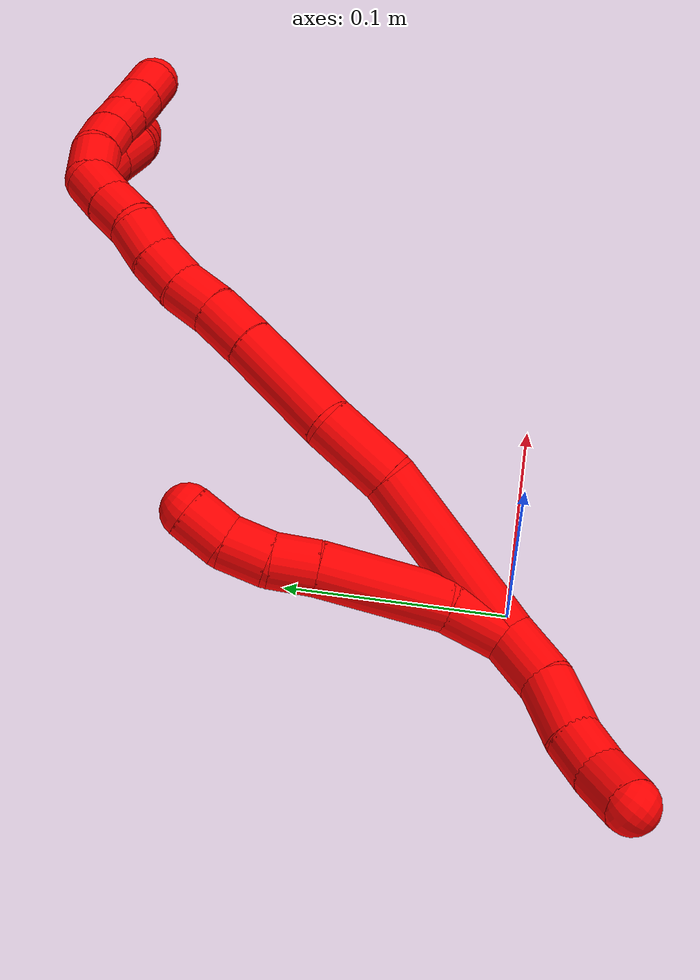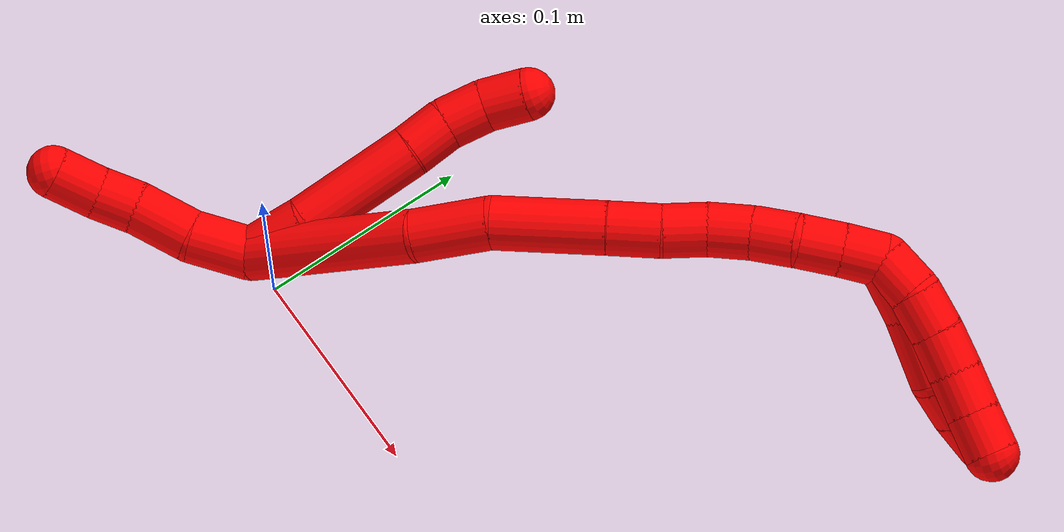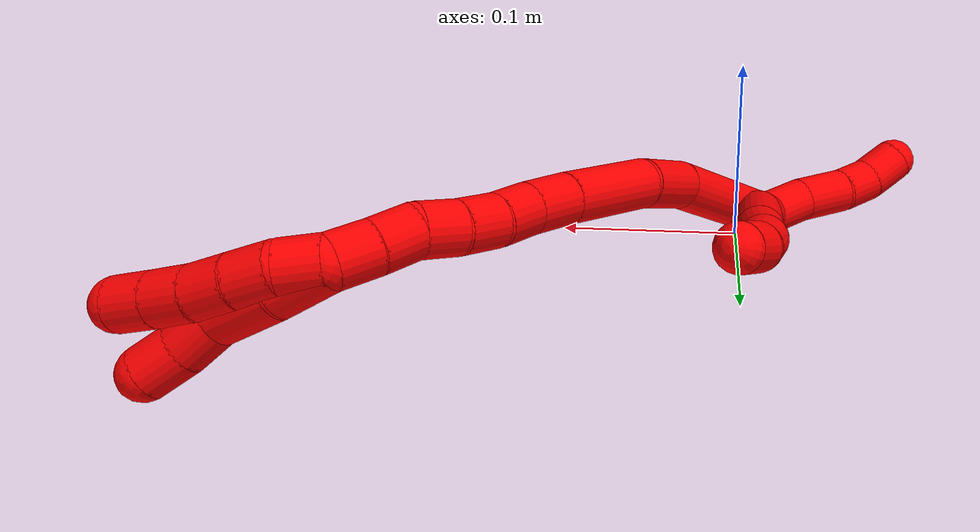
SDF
<sdf version="1.7">
 <world name="default">
  <model name="2">
   <static>0</static>
   <link name="2">
    <collision name="collision-cylinder-e_1_2_8">
     <pose>-0.003391 -0.000907 0.014406 0.06288 -0.230718 -0.007289</pose>
     <geometry><cylinder><radius>0.0125</radius><length>0.029655</length></cylinder></geometry>
     <surface>
      <friction><ode><mu>1.16</mu><mu2>1.16</mu2><slip1>0</slip1><slip2>0</slip2></ode></friction>
      <contact><ode><kp>1e+06</kp><kd>1</kd><max_vel>0</max_vel><min_depth>0.001</min_depth></ode></contact>
     </surface>
    </collision>
    <visual name="visual-cylinder-e_1_2_8">
     <pose>-0.003391 -0.000907 0.014406 0.06288 -0.230718 -0.007289</pose>
     <geometry><cylinder><radius>0.0125</radius><length>0.029655</length></cylinder></geometry>
     <material><ambient>1 0 0 1</ambient></material>
    </visual>
    <collision name="collision-cylinder-e_2_8_9">
     <pose>-0.018745 -0.000324 0.055417 -0.055944 -0.422 0.011985</pose>
     <geometry><cylinder><radius>0.0125</radius><length>0.058418</length></cylinder></geometry>
     <surface>
      <friction><ode><mu>1.16</mu><mu2>1.16</mu2><slip1>0</slip1><slip2>0</slip2></ode></friction>
      <contact><ode><kp>1e+06</kp><kd>1</kd><max_vel>0</max_vel><min_depth>0.001</min_depth></ode></contact>
     </surface>
    </collision>
    <visual name="visual-cylinder-e_2_8_9">
     <pose>-0.018745 -0.000324 0.055417 -0.055944 -0.422 0.011985</pose>
     <geometry><cylinder><radius>0.0125</radius><length>0.058418</length></cylinder></geometry>
     <material><ambient>1 0 0 1</ambient></material>
    </visual>
    <collision name="collision-cylinder-e_3_9_10">
     <pose>-0.035792 0.001914 0.090961 -0.083521 -0.515612 0.022034</pose>
     <geometry><cylinder><radius>0.0125</radius><length>0.020621</length></cylinder></geometry>
     <surface>
      <friction><ode><mu>1.16</mu><mu2>1.16</mu2><slip1>0</slip1><slip2>0</slip2></ode></friction>
      <contact><ode><kp>1e+06</kp><kd>1</kd><max_vel>0</max_vel><min_depth>0.001</min_depth></ode></contact>
     </surface>
    </collision>
    <visual name="visual-cylinder-e_3_9_10">
     <pose>-0.035792 0.001914 0.090961 -0.083521 -0.515612 0.022034</pose>
     <geometry><cylinder><radius>0.0125</radius><length>0.020621</length></cylinder></geometry>
     <material><ambient>1 0 0 1</ambient></material>
    </visual>
    <collision name="collision-cylinder-e_4_10_11">
     <pose>-0.043725 0.00401 0.109635 -0.137541 -0.282152 0.019564</pose>
     <geometry><cylinder><radius>0.0125</radius><length>0.020466</length></cylinder></geometry>
     <surface>
      <friction><ode><mu>1.16</mu><mu2>1.16</mu2><slip1>0</slip1><slip2>0</slip2></ode></friction>
      <contact><ode><kp>1e+06</kp><kd>1</kd><max_vel>0</max_vel><min_depth>0.001</min_depth></ode></contact>
     </surface>
    </collision>
    <visual name="visual-cylinder-e_4_10_11">
     <pose>-0.043725 0.00401 0.109635 -0.137541 -0.282152 0.019564</pose>
     <geometry><cylinder><radius>0.0125</radius><length>0.020466</length></cylinder></geometry>
     <material><ambient>1 0 0 1</ambient></material>
    </visual>
    <collision name="collision-cylinder-e_5_11_6">
     <pose>-0.046595 0.006303 0.129748 -0.090849 -0.001933 8.8e-05</pose>
     <geometry><cylinder><radius>0.0125</radius><length>0.02084</length></cylinder></geometry>
     <surface>
      <friction><ode><mu>1.16</mu><mu2>1.16</mu2><slip1>0</slip1><slip2>0</slip2></ode></friction>
      <contact><ode><kp>1e+06</kp><kd>1</kd><max_vel>0</max_vel><min_depth>0.001</min_depth></ode></contact>
     </surface>
    </collision>
    <visual name="visual-cylinder-e_5_11_6">
     <pose>-0.046595 0.006303 0.129748 -0.090849 -0.001933 8.8e-05</pose>
     <geometry><cylinder><radius>0.0125</radius><length>0.02084</length></cylinder></geometry>
     <material><ambient>1 0 0 1</ambient></material>
    </visual>
    <collision name="collision-cylinder-e_1_2_12">
     <pose>-0.003904 -0.007966 -0.011413 2.53221 -0.273451 -0.824802</pose>
     <geometry><cylinder><radius>0.0125</radius><length>0.02891</length></cylinder></geometry>
     <surface>
      <friction><ode><mu>1.16</mu><mu2>1.16</mu2><slip1>0</slip1><slip2>0</slip2></ode></friction>
      <contact><ode><kp>1e+06</kp><kd>1</kd><max_vel>0</max_vel><min_depth>0.001</min_depth></ode></contact>
     </surface>
    </collision>
    <visual name="visual-cylinder-e_1_2_12">
     <pose>-0.003904 -0.007966 -0.011413 2.53221 -0.273451 -0.824802</pose>
     <geometry><cylinder><radius>0.0125</radius><length>0.02891</length></cylinder></geometry>
     <material><ambient>1 0 0 1</ambient></material>
    </visual>
    <collision name="collision-cylinder-e_2_12_13">
     <pose>-0.014563 -0.023389 -0.03272 2.49578 -0.499199 -1.30204</pose>
     <geometry><cylinder><radius>0.0125</radius><length>0.028224</length></cylinder></geometry>
     <surface>
      <friction><ode><mu>1.16</mu><mu2>1.16</mu2><slip1>0</slip1><slip2>0</slip2></ode></friction>
      <contact><ode><kp>1e+06</kp><kd>1</kd><max_vel>0</max_vel><min_depth>0.001</min_depth></ode></contact>
     </surface>
    </collision>
    <visual name="visual-cylinder-e_2_12_13">
     <pose>-0.014563 -0.023389 -0.03272 2.49578 -0.499199 -1.30204</pose>
     <geometry><cylinder><radius>0.0125</radius><length>0.028224</length></cylinder></geometry>
     <material><ambient>1 0 0 1</ambient></material>
    </visual>
    <collision name="collision-cylinder-e_3_13_14">
     <pose>-0.02453 -0.036817 -0.050037 2.46413 -0.325119 -0.871368</pose>
     <geometry><cylinder><radius>0.0125</radius><length>0.020106</length></cylinder></geometry>
     <surface>
      <friction><ode><mu>1.16</mu><mu2>1.16</mu2><slip1>0</slip1><slip2>0</slip2></ode></friction>
      <contact><ode><kp>1e+06</kp><kd>1</kd><max_vel>0</max_vel><min_depth>0.001</min_depth></ode></contact>
     </surface>
    </collision>
    <visual name="visual-cylinder-e_3_13_14">
     <pose>-0.02453 -0.036817 -0.050037 2.46413 -0.325119 -0.871368</pose>
     <geometry><cylinder><radius>0.0125</radius><length>0.020106</length></cylinder></geometry>
     <material><ambient>1 0 0 1</ambient></material>
    </visual>
    <collision name="collision-cylinder-e_4_14_5">
     <pose>-0.030331 -0.051529 -0.064272 2.23279 -0.229574 -0.463555</pose>
     <geometry><cylinder><radius>0.0125</radius><length>0.02276</length></cylinder></geometry>
     <surface>
      <friction><ode><mu>1.16</mu><mu2>1.16</mu2><slip1>0</slip1><slip2>0</slip2></ode></friction>
      <contact><ode><kp>1e+06</kp><kd>1</kd><max_vel>0</max_vel><min_depth>0.001</min_depth></ode></contact>
     </surface>
    </collision>
    <visual name="visual-cylinder-e_4_14_5">
     <pose>-0.030331 -0.051529 -0.064272 2.23279 -0.229574 -0.463555</pose>
     <geometry><cylinder><radius>0.0125</radius><length>0.02276</length></cylinder></geometry>
     <material><ambient>1 0 0 1</ambient></material>
    </visual>
    <collision name="collision-cylinder-e_1_2_15">
     <pose>0.009879 -8.1e-05 0.041371 0.001956 0.234396 0.00023</pose>
     <geometry><cylinder><radius>0.0125</radius><length>0.085069</length></cylinder></geometry>
     <surface>
      <friction><ode><mu>1.16</mu><mu2>1.16</mu2><slip1>0</slip1><slip2>0</slip2></ode></friction>
      <contact><ode><kp>1e+06</kp><kd>1</kd><max_vel>0</max_vel><min_depth>0.001</min_depth></ode></contact>
     </surface>
    </collision>
    <visual name="visual-cylinder-e_1_2_15">
     <pose>0.009879 -8.1e-05 0.041371 0.001956 0.234396 0.00023</pose>
     <geometry><cylinder><radius>0.0125</radius><length>0.085069</length></cylinder></geometry>
     <material><ambient>1 0 0 1</ambient></material>
    </visual>
    <collision name="collision-cylinder-e_2_15_16">
     <pose>0.020992 0.002138 0.100603 -0.128051 0.068452 -0.00439</pose>
     <geometry><cylinder><radius>0.0125</radius><length>0.036101</length></cylinder></geometry>
     <surface>
      <friction><ode><mu>1.16</mu><mu2>1.16</mu2><slip1>0</slip1><slip2>0</slip2></ode></friction>
      <contact><ode><kp>1e+06</kp><kd>1</kd><max_vel>0</max_vel><min_depth>0.001</min_depth></ode></contact>
     </surface>
    </collision>
    <visual name="visual-cylinder-e_2_15_16">
     <pose>0.020992 0.002138 0.100603 -0.128051 0.068452 -0.00439</pose>
     <geometry><cylinder><radius>0.0125</radius><length>0.036101</length></cylinder></geometry>
     <material><ambient>1 0 0 1</ambient></material>
    </visual>
    <collision name="collision-cylinder-e_3_16_17">
     <pose>0.026589 0.013422 0.142859 -0.352879 0.166249 -0.029707</pose>
     <geometry><cylinder><radius>0.0125</radius><length>0.05272</length></cylinder></geometry>
     <surface>
      <friction><ode><mu>1.16</mu><mu2>1.16</mu2><slip1>0</slip1><slip2>0</slip2></ode></friction>
      <contact><ode><kp>1e+06</kp><kd>1</kd><max_vel>0</max_vel><min_depth>0.001</min_depth></ode></contact>
     </surface>
    </collision>
    <visual name="visual-cylinder-e_3_16_17">
     <pose>0.026589 0.013422 0.142859 -0.352879 0.166249 -0.029707</pose>
     <geometry><cylinder><radius>0.0125</radius><length>0.05272</length></cylinder></geometry>
     <material><ambient>1 0 0 1</ambient></material>
    </visual>
    <collision name="collision-cylinder-e_4_17_18">
     <pose>0.032734 0.027063 0.178438 -0.394513 0.14607 -0.029243</pose>
     <geometry><cylinder><radius>0.0125</radius><length>0.024489</length></cylinder></geometry>
     <surface>
      <friction><ode><mu>1.16</mu><mu2>1.16</mu2><slip1>0</slip1><slip2>0</slip2></ode></friction>
      <contact><ode><kp>1e+06</kp><kd>1</kd><max_vel>0</max_vel><min_depth>0.001</min_depth></ode></contact>
     </surface>
    </collision>
    <visual name="visual-cylinder-e_4_17_18">
     <pose>0.032734 0.027063 0.178438 -0.394513 0.14607 -0.029243</pose>
     <geometry><cylinder><radius>0.0125</radius><length>0.024489</length></cylinder></geometry>
     <material><ambient>1 0 0 1</ambient></material>
    </visual>
    <collision name="collision-cylinder-e_5_18_19">
     <pose>0.034894 0.035674 0.199218 -0.390933 0.036409 -0.007209</pose>
     <geometry><cylinder><radius>0.0125</radius><length>0.020772</length></cylinder></geometry>
     <surface>
      <friction><ode><mu>1.16</mu><mu2>1.16</mu2><slip1>0</slip1><slip2>0</slip2></ode></friction>
      <contact><ode><kp>1e+06</kp><kd>1</kd><max_vel>0</max_vel><min_depth>0.001</min_depth></ode></contact>
     </surface>
    </collision>
    <visual name="visual-cylinder-e_5_18_19">
     <pose>0.034894 0.035674 0.199218 -0.390933 0.036409 -0.007209</pose>
     <geometry><cylinder><radius>0.0125</radius><length>0.020772</length></cylinder></geometry>
     <material><ambient>1 0 0 1</ambient></material>
    </visual>
    <collision name="collision-cylinder-e_6_19_20">
     <pose>0.037304 0.043168 0.218192 -0.36082 0.200058 -0.036607</pose>
     <geometry><cylinder><radius>0.0125</radius><length>0.020455</length></cylinder></geometry>
     <surface>
      <friction><ode><mu>1.16</mu><mu2>1.16</mu2><slip1>0</slip1><slip2>0</slip2></ode></friction>
      <contact><ode><kp>1e+06</kp><kd>1</kd><max_vel>0</max_vel><min_depth>0.001</min_depth></ode></contact>
     </surface>
    </collision>
    <visual name="visual-cylinder-e_6_19_20">
     <pose>0.037304 0.043168 0.218192 -0.36082 0.200058 -0.036607</pose>
     <geometry><cylinder><radius>0.0125</radius><length>0.020455</length></cylinder></geometry>
     <material><ambient>1 0 0 1</ambient></material>
    </visual>
    <collision name="collision-cylinder-e_7_20_21">
     <pose>0.042679 0.049851 0.23664 -0.33367 0.335068 -0.056944</pose>
     <geometry><cylinder><radius>0.0125</radius><length>0.02033</length></cylinder></geometry>
     <surface>
      <friction><ode><mu>1.16</mu><mu2>1.16</mu2><slip1>0</slip1><slip2>0</slip2></ode></friction>
      <contact><ode><kp>1e+06</kp><kd>1</kd><max_vel>0</max_vel><min_depth>0.001</min_depth></ode></contact>
     </surface>
    </collision>
    <visual name="visual-cylinder-e_7_20_21">
     <pose>0.042679 0.049851 0.23664 -0.33367 0.335068 -0.056944</pose>
     <geometry><cylinder><radius>0.0125</radius><length>0.02033</length></cylinder></geometry>
     <material><ambient>1 0 0 1</ambient></material>
    </visual>
    <collision name="collision-cylinder-e_8_21_22">
     <pose>0.047918 0.058398 0.253923 -0.58196 0.190525 -0.057216</pose>
     <geometry><cylinder><radius>0.0125</radius><length>0.020025</length></cylinder></geometry>
     <surface>
      <friction><ode><mu>1.16</mu><mu2>1.16</mu2><slip1>0</slip1><slip2>0</slip2></ode></friction>
      <contact><ode><kp>1e+06</kp><kd>1</kd><max_vel>0</max_vel><min_depth>0.001</min_depth></ode></contact>
     </surface>
    </collision>
    <visual name="visual-cylinder-e_8_21_22">
     <pose>0.047918 0.058398 0.253923 -0.58196 0.190525 -0.057216</pose>
     <geometry><cylinder><radius>0.0125</radius><length>0.020025</length></cylinder></geometry>
     <material><ambient>1 0 0 1</ambient></material>
    </visual>
    <collision name="collision-cylinder-e_9_22_1">
     <pose>0.052314 0.069038 0.270305 -0.56995 0.252154 -0.074228</pose>
     <geometry><cylinder><radius>0.0125</radius><length>0.020038</length></cylinder></geometry>
     <surface>
      <friction><ode><mu>1.16</mu><mu2>1.16</mu2><slip1>0</slip1><slip2>0</slip2></ode></friction>
      <contact><ode><kp>1e+06</kp><kd>1</kd><max_vel>0</max_vel><min_depth>0.001</min_depth></ode></contact>
     </surface>
    </collision>
    <visual name="visual-cylinder-e_9_22_1">
     <pose>0.052314 0.069038 0.270305 -0.56995 0.252154 -0.074228</pose>
     <geometry><cylinder><radius>0.0125</radius><length>0.020038</length></cylinder></geometry>
     <material><ambient>1 0 0 1</ambient></material>
    </visual>
    <collision name="collision-cylinder-e_1_1_23">
     <pose>0.062072 0.079549 0.282888 -0.874099 0.812191 -0.396495</pose>
     <geometry><cylinder><radius>0.0125</radius><length>0.02</length></cylinder></geometry>
     <surface>
      <friction><ode><mu>1.16</mu><mu2>1.16</mu2><slip1>0</slip1><slip2>0</slip2></ode></friction>
      <contact><ode><kp>1e+06</kp><kd>1</kd><max_vel>0</max_vel><min_depth>0.001</min_depth></ode></contact>
     </surface>
    </collision>
    <visual name="visual-cylinder-e_1_1_23">
     <pose>0.062072 0.079549 0.282888 -0.874099 0.812191 -0.396495</pose>
     <geometry><cylinder><radius>0.0125</radius><length>0.02</length></cylinder></geometry>
     <material><ambient>1 0 0 1</ambient></material>
    </visual>
    <collision name="collision-cylinder-e_2_23_24">
     <pose>0.076543 0.09145 0.28932 -1.27505 0.805708 -0.611524</pose>
     <geometry><cylinder><radius>0.0125</radius><length>0.02</length></cylinder></geometry>
     <surface>
      <friction><ode><mu>1.16</mu><mu2>1.16</mu2><slip1>0</slip1><slip2>0</slip2></ode></friction>
      <contact><ode><kp>1e+06</kp><kd>1</kd><max_vel>0</max_vel><min_depth>0.001</min_depth></ode></contact>
     </surface>
    </collision>
    <visual name="visual-cylinder-e_2_23_24">
     <pose>0.076543 0.09145 0.28932 -1.27505 0.805708 -0.611524</pose>
     <geometry><cylinder><radius>0.0125</radius><length>0.02</length></cylinder></geometry>
     <material><ambient>1 0 0 1</ambient></material>
    </visual>
    <collision name="collision-cylinder-e_3_24_25">
     <pose>0.091164 0.104673 0.292603 -1.38149 0.834246 -0.702211</pose>
     <geometry><cylinder><radius>0.0125</radius><length>0.02</length></cylinder></geometry>
     <surface>
      <friction><ode><mu>1.16</mu><mu2>1.16</mu2><slip1>0</slip1><slip2>0</slip2></ode></friction>
      <contact><ode><kp>1e+06</kp><kd>1</kd><max_vel>0</max_vel><min_depth>0.001</min_depth></ode></contact>
     </surface>
    </collision>
    <visual name="visual-cylinder-e_3_24_25">
     <pose>0.091164 0.104673 0.292603 -1.38149 0.834246 -0.702211</pose>
     <geometry><cylinder><radius>0.0125</radius><length>0.02</length></cylinder></geometry>
     <material><ambient>1 0 0 1</ambient></material>
    </visual>
    <collision name="collision-cylinder-e_4_25_26">
     <pose>0.106661 0.117021 0.29509 -1.36126 0.942264 -0.782396</pose>
     <geometry><cylinder><radius>0.0125</radius><length>0.02</length></cylinder></geometry>
     <surface>
      <friction><ode><mu>1.16</mu><mu2>1.16</mu2><slip1>0</slip1><slip2>0</slip2></ode></friction>
      <contact><ode><kp>1e+06</kp><kd>1</kd><max_vel>0</max_vel><min_depth>0.001</min_depth></ode></contact>
     </surface>
    </collision>
    <visual name="visual-cylinder-e_4_25_26">
     <pose>0.106661 0.117021 0.29509 -1.36126 0.942264 -0.782396</pose>
     <geometry><cylinder><radius>0.0125</radius><length>0.02</length></cylinder></geometry>
     <material><ambient>1 0 0 1</ambient></material>
    </visual>
    <collision name="collision-cylinder-e_5_26_4">
     <pose>0.122906 0.128389 0.297703 -1.32815 0.953762 -0.768523</pose>
     <geometry><cylinder><radius>0.0125</radius><length>0.02</length></cylinder></geometry>
     <surface>
      <friction><ode><mu>1.16</mu><mu2>1.16</mu2><slip1>0</slip1><slip2>0</slip2></ode></friction>
      <contact><ode><kp>1e+06</kp><kd>1</kd><max_vel>0</max_vel><min_depth>0.001</min_depth></ode></contact>
     </surface>
    </collision>
    <visual name="visual-cylinder-e_5_26_4">
     <pose>0.122906 0.128389 0.297703 -1.32815 0.953762 -0.768523</pose>
     <geometry><cylinder><radius>0.0125</radius><length>0.02</length></cylinder></geometry>
     <material><ambient>1 0 0 1</ambient></material>
    </visual>
    <collision name="collision-cylinder-e_1_1_27">
     <pose>0.062986 0.084966 0.280076 -1.422 0.647197 -0.562411</pose>
     <geometry><cylinder><radius>0.0125</radius><length>0.027108</length></cylinder></geometry>
     <surface>
      <friction><ode><mu>1.16</mu><mu2>1.16</mu2><slip1>0</slip1><slip2>0</slip2></ode></friction>
      <contact><ode><kp>1e+06</kp><kd>1</kd><max_vel>0</max_vel><min_depth>0.001</min_depth></ode></contact>
     </surface>
    </collision>
    <visual name="visual-cylinder-e_1_1_27">
     <pose>0.062986 0.084966 0.280076 -1.422 0.647197 -0.562411</pose>
     <geometry><cylinder><radius>0.0125</radius><length>0.027108</length></cylinder></geometry>
     <material><ambient>1 0 0 1</ambient></material>
    </visual>
    <collision name="collision-cylinder-e_2_27_28">
     <pose>0.082164 0.107813 0.282226 -1.52588 0.735404 -0.705759</pose>
     <geometry><cylinder><radius>0.0125</radius><length>0.03281</length></cylinder></geometry>
     <surface>
      <friction><ode><mu>1.16</mu><mu2>1.16</mu2><slip1>0</slip1><slip2>0</slip2></ode></friction>
      <contact><ode><kp>1e+06</kp><kd>1</kd><max_vel>0</max_vel><min_depth>0.001</min_depth></ode></contact>
     </surface>
    </collision>
    <visual name="visual-cylinder-e_2_27_28">
     <pose>0.082164 0.107813 0.282226 -1.52588 0.735404 -0.705759</pose>
     <geometry><cylinder><radius>0.0125</radius><length>0.03281</length></cylinder></geometry>
     <material><ambient>1 0 0 1</ambient></material>
    </visual>
    <collision name="collision-cylinder-e_3_28_29">
     <pose>0.097128 0.129046 0.284174 -1.4176 0.406747 -0.350034</pose>
     <geometry><cylinder><radius>0.0125</radius><length>0.020007</length></cylinder></geometry>
     <surface>
      <friction><ode><mu>1.16</mu><mu2>1.16</mu2><slip1>0</slip1><slip2>0</slip2></ode></friction>
      <contact><ode><kp>1e+06</kp><kd>1</kd><max_vel>0</max_vel><min_depth>0.001</min_depth></ode></contact>
     </surface>
    </collision>
    <visual name="visual-cylinder-e_3_28_29">
     <pose>0.097128 0.129046 0.284174 -1.4176 0.406747 -0.350034</pose>
     <geometry><cylinder><radius>0.0125</radius><length>0.020007</length></cylinder></geometry>
     <material><ambient>1 0 0 1</ambient></material>
    </visual>
    <collision name="collision-cylinder-e_4_29_3">
     <pose>0.105576 0.146691 0.288263 -1.26677 0.46386 -0.343445</pose>
     <geometry><cylinder><radius>0.0125</radius><length>0.020075</length></cylinder></geometry>
     <surface>
      <friction><ode><mu>1.16</mu><mu2>1.16</mu2><slip1>0</slip1><slip2>0</slip2></ode></friction>
      <contact><ode><kp>1e+06</kp><kd>1</kd><max_vel>0</max_vel><min_depth>0.001</min_depth></ode></contact>
     </surface>
    </collision>
    <visual name="visual-cylinder-e_4_29_3">
     <pose>0.105576 0.146691 0.288263 -1.26677 0.46386 -0.343445</pose>
     <geometry><cylinder><radius>0.0125</radius><length>0.020075</length></cylinder></geometry>
     <material><ambient>1 0 0 1</ambient></material>
    </visual>
    <collision name="collision-sphere-3">
     <pose>0.110067 0.155256 0.29095 0 -0 0</pose>
     <geometry><sphere><radius>0.0125</radius></sphere></geometry>
     <surface>
      <friction><ode><mu>1.16</mu><mu2>1.16</mu2><slip1>0</slip1><slip2>0</slip2></ode></friction>
      <contact><ode><kp>1e+06</kp><kd>1</kd><max_vel>0</max_vel><min_depth>0.001</min_depth></ode></contact>
     </surface>
    </collision>
    <visual name="visual-sphere-3">
     <pose>0.110067 0.155256 0.29095 0 -0 0</pose>
     <geometry><sphere><radius>0.0125</radius></sphere></geometry>
     <material><ambient>1 0 0 1</ambient></material>
    </visual>
    <collision name="collision-sphere-29">
     <pose>0.101086 0.138126 0.285576 0 -0 0</pose>
     <geometry><sphere><radius>0.0125</radius></sphere></geometry>
     <surface>
      <friction><ode><mu>1.16</mu><mu2>1.16</mu2><slip1>0</slip1><slip2>0</slip2></ode></friction>
      <contact><ode><kp>1e+06</kp><kd>1</kd><max_vel>0</max_vel><min_depth>0.001</min_depth></ode></contact>
     </surface>
    </collision>
    <visual name="visual-sphere-29">
     <pose>0.101086 0.138126 0.285576 0 -0 0</pose>
     <geometry><sphere><radius>0.0125</radius></sphere></geometry>
     <material><ambient>1 0 0 1</ambient></material>
    </visual>
    <collision name="collision-sphere-28">
     <pose>0.09317 0.119966 0.282772 0 -0 0</pose>
     <geometry><sphere><radius>0.0125</radius></sphere></geometry>
     <surface>
      <friction><ode><mu>1.16</mu><mu2>1.16</mu2><slip1>0</slip1><slip2>0</slip2></ode></friction>
      <contact><ode><kp>1e+06</kp><kd>1</kd><max_vel>0</max_vel><min_depth>0.001</min_depth></ode></contact>
     </surface>
    </collision>
    <visual name="visual-sphere-28">
     <pose>0.09317 0.119966 0.282772 0 -0 0</pose>
     <geometry><sphere><radius>0.0125</radius></sphere></geometry>
     <material><ambient>1 0 0 1</ambient></material>
    </visual>
    <collision name="collision-sphere-27">
     <pose>0.071158 0.09566 0.281679 0 -0 0</pose>
     <geometry><sphere><radius>0.0125</radius></sphere></geometry>
     <surface>
      <friction><ode><mu>1.16</mu><mu2>1.16</mu2><slip1>0</slip1><slip2>0</slip2></ode></friction>
      <contact><ode><kp>1e+06</kp><kd>1</kd><max_vel>0</max_vel><min_depth>0.001</min_depth></ode></contact>
     </surface>
    </collision>
    <visual name="visual-sphere-27">
     <pose>0.071158 0.09566 0.281679 0 -0 0</pose>
     <geometry><sphere><radius>0.0125</radius></sphere></geometry>
     <material><ambient>1 0 0 1</ambient></material>
    </visual>
    <collision name="collision-sphere-4">
     <pose>0.131062 0.134005 0.299094 0 -0 0</pose>
     <geometry><sphere><radius>0.0125</radius></sphere></geometry>
     <surface>
      <friction><ode><mu>1.16</mu><mu2>1.16</mu2><slip1>0</slip1><slip2>0</slip2></ode></friction>
      <contact><ode><kp>1e+06</kp><kd>1</kd><max_vel>0</max_vel><min_depth>0.001</min_depth></ode></contact>
     </surface>
    </collision>
    <visual name="visual-sphere-4">
     <pose>0.131062 0.134005 0.299094 0 -0 0</pose>
     <geometry><sphere><radius>0.0125</radius></sphere></geometry>
     <material><ambient>1 0 0 1</ambient></material>
    </visual>
    <collision name="collision-sphere-26">
     <pose>0.11475 0.122772 0.296313 0 -0 0</pose>
     <geometry><sphere><radius>0.0125</radius></sphere></geometry>
     <surface>
      <friction><ode><mu>1.16</mu><mu2>1.16</mu2><slip1>0</slip1><slip2>0</slip2></ode></friction>
      <contact><ode><kp>1e+06</kp><kd>1</kd><max_vel>0</max_vel><min_depth>0.001</min_depth></ode></contact>
     </surface>
    </collision>
    <visual name="visual-sphere-26">
     <pose>0.11475 0.122772 0.296313 0 -0 0</pose>
     <geometry><sphere><radius>0.0125</radius></sphere></geometry>
     <material><ambient>1 0 0 1</ambient></material>
    </visual>
    <collision name="collision-sphere-25">
     <pose>0.098572 0.11127 0.293867 0 -0 0</pose>
     <geometry><sphere><radius>0.0125</radius></sphere></geometry>
     <surface>
      <friction><ode><mu>1.16</mu><mu2>1.16</mu2><slip1>0</slip1><slip2>0</slip2></ode></friction>
      <contact><ode><kp>1e+06</kp><kd>1</kd><max_vel>0</max_vel><min_depth>0.001</min_depth></ode></contact>
     </surface>
    </collision>
    <visual name="visual-sphere-25">
     <pose>0.098572 0.11127 0.293867 0 -0 0</pose>
     <geometry><sphere><radius>0.0125</radius></sphere></geometry>
     <material><ambient>1 0 0 1</ambient></material>
    </visual>
    <collision name="collision-sphere-24">
     <pose>0.083756 0.098075 0.291339 0 -0 0</pose>
     <geometry><sphere><radius>0.0125</radius></sphere></geometry>
     <surface>
      <friction><ode><mu>1.16</mu><mu2>1.16</mu2><slip1>0</slip1><slip2>0</slip2></ode></friction>
      <contact><ode><kp>1e+06</kp><kd>1</kd><max_vel>0</max_vel><min_depth>0.001</min_depth></ode></contact>
     </surface>
    </collision>
    <visual name="visual-sphere-24">
     <pose>0.083756 0.098075 0.291339 0 -0 0</pose>
     <geometry><sphere><radius>0.0125</radius></sphere></geometry>
     <material><ambient>1 0 0 1</ambient></material>
    </visual>
    <collision name="collision-sphere-23">
     <pose>0.069329 0.084825 0.287302 0 -0 0</pose>
     <geometry><sphere><radius>0.0125</radius></sphere></geometry>
     <surface>
      <friction><ode><mu>1.16</mu><mu2>1.16</mu2><slip1>0</slip1><slip2>0</slip2></ode></friction>
      <contact><ode><kp>1e+06</kp><kd>1</kd><max_vel>0</max_vel><min_depth>0.001</min_depth></ode></contact>
     </surface>
    </collision>
    <visual name="visual-sphere-23">
     <pose>0.069329 0.084825 0.287302 0 -0 0</pose>
     <geometry><sphere><radius>0.0125</radius></sphere></geometry>
     <material><ambient>1 0 0 1</ambient></material>
    </visual>
    <collision name="collision-sphere-1">
     <pose>0.054814 0.074273 0.278473 0 -0 0</pose>
     <geometry><sphere><radius>0.0125</radius></sphere></geometry>
     <surface>
      <friction><ode><mu>1.16</mu><mu2>1.16</mu2><slip1>0</slip1><slip2>0</slip2></ode></friction>
      <contact><ode><kp>1e+06</kp><kd>1</kd><max_vel>0</max_vel><min_depth>0.001</min_depth></ode></contact>
     </surface>
    </collision>
    <visual name="visual-sphere-1">
     <pose>0.054814 0.074273 0.278473 0 -0 0</pose>
     <geometry><sphere><radius>0.0125</radius></sphere></geometry>
     <material><ambient>1 0 0 1</ambient></material>
    </visual>
    <collision name="collision-sphere-22">
     <pose>0.049814 0.063802 0.262136 0 -0 0</pose>
     <geometry><sphere><radius>0.0125</radius></sphere></geometry>
     <surface>
      <friction><ode><mu>1.16</mu><mu2>1.16</mu2><slip1>0</slip1><slip2>0</slip2></ode></friction>
      <contact><ode><kp>1e+06</kp><kd>1</kd><max_vel>0</max_vel><min_depth>0.001</min_depth></ode></contact>
     </surface>
    </collision>
    <visual name="visual-sphere-22">
     <pose>0.049814 0.063802 0.262136 0 -0 0</pose>
     <geometry><sphere><radius>0.0125</radius></sphere></geometry>
     <material><ambient>1 0 0 1</ambient></material>
    </visual>
    <collision name="collision-sphere-21">
     <pose>0.046022 0.052995 0.24571 0 -0 0</pose>
     <geometry><sphere><radius>0.0125</radius></sphere></geometry>
     <surface>
      <friction><ode><mu>1.16</mu><mu2>1.16</mu2><slip1>0</slip1><slip2>0</slip2></ode></friction>
      <contact><ode><kp>1e+06</kp><kd>1</kd><max_vel>0</max_vel><min_depth>0.001</min_depth></ode></contact>
     </surface>
    </collision>
    <visual name="visual-sphere-21">
     <pose>0.046022 0.052995 0.24571 0 -0 0</pose>
     <geometry><sphere><radius>0.0125</radius></sphere></geometry>
     <material><ambient>1 0 0 1</ambient></material>
    </visual>
    <collision name="collision-sphere-6">
     <pose>-0.046615 0.007248 0.140125 0 -0 0</pose>
     <geometry><sphere><radius>0.0125</radius></sphere></geometry>
     <surface>
      <friction><ode><mu>1.16</mu><mu2>1.16</mu2><slip1>0</slip1><slip2>0</slip2></ode></friction>
      <contact><ode><kp>1e+06</kp><kd>1</kd><max_vel>0</max_vel><min_depth>0.001</min_depth></ode></contact>
     </surface>
    </collision>
    <visual name="visual-sphere-6">
     <pose>-0.046615 0.007248 0.140125 0 -0 0</pose>
     <geometry><sphere><radius>0.0125</radius></sphere></geometry>
     <material><ambient>1 0 0 1</ambient></material>
    </visual>
    <collision name="collision-sphere-11">
     <pose>-0.046574 0.005357 0.119371 0 -0 0</pose>
     <geometry><sphere><radius>0.0125</radius></sphere></geometry>
     <surface>
      <friction><ode><mu>1.16</mu><mu2>1.16</mu2><slip1>0</slip1><slip2>0</slip2></ode></friction>
      <contact><ode><kp>1e+06</kp><kd>1</kd><max_vel>0</max_vel><min_depth>0.001</min_depth></ode></contact>
     </surface>
    </collision>
    <visual name="visual-sphere-11">
     <pose>-0.046574 0.005357 0.119371 0 -0 0</pose>
     <geometry><sphere><radius>0.0125</radius></sphere></geometry>
     <material><ambient>1 0 0 1</ambient></material>
    </visual>
    <collision name="collision-sphere-10">
     <pose>-0.040876 0.002662 0.0999 0 -0 0</pose>
     <geometry><sphere><radius>0.0125</radius></sphere></geometry>
     <surface>
      <friction><ode><mu>1.16</mu><mu2>1.16</mu2><slip1>0</slip1><slip2>0</slip2></ode></friction>
      <contact><ode><kp>1e+06</kp><kd>1</kd><max_vel>0</max_vel><min_depth>0.001</min_depth></ode></contact>
     </surface>
    </collision>
    <visual name="visual-sphere-10">
     <pose>-0.040876 0.002662 0.0999 0 -0 0</pose>
     <geometry><sphere><radius>0.0125</radius></sphere></geometry>
     <material><ambient>1 0 0 1</ambient></material>
    </visual>
    <collision name="collision-sphere-9">
     <pose>-0.030709 0.001166 0.082022 0 -0 0</pose>
     <geometry><sphere><radius>0.0125</radius></sphere></geometry>
     <surface>
      <friction><ode><mu>1.16</mu><mu2>1.16</mu2><slip1>0</slip1><slip2>0</slip2></ode></friction>
      <contact><ode><kp>1e+06</kp><kd>1</kd><max_vel>0</max_vel><min_depth>0.001</min_depth></ode></contact>
     </surface>
    </collision>
    <visual name="visual-sphere-9">
     <pose>-0.030709 0.001166 0.082022 0 -0 0</pose>
     <geometry><sphere><radius>0.0125</radius></sphere></geometry>
     <material><ambient>1 0 0 1</ambient></material>
    </visual>
    <collision name="collision-sphere-2">
     <geometry><sphere><radius>0.0125</radius></sphere></geometry>
     <surface>
      <friction><ode><mu>1.16</mu><mu2>1.16</mu2><slip1>0</slip1><slip2>0</slip2></ode></friction>
      <contact><ode><kp>1e+06</kp><kd>1</kd><max_vel>0</max_vel><min_depth>0.001</min_depth></ode></contact>
     </surface>
    </collision>
    <visual name="visual-sphere-2">
     <geometry><sphere><radius>0.0125</radius></sphere></geometry>
     <material><ambient>1 0 0 1</ambient></material>
    </visual>
    <collision name="collision-sphere-19">
     <pose>0.035272 0.039629 0.208814 0 -0 0</pose>
     <geometry><sphere><radius>0.0125</radius></sphere></geometry>
     <surface>
      <friction><ode><mu>1.16</mu><mu2>1.16</mu2><slip1>0</slip1><slip2>0</slip2></ode></friction>
      <contact><ode><kp>1e+06</kp><kd>1</kd><max_vel>0</max_vel><min_depth>0.001</min_depth></ode></contact>
     </surface>
    </collision>
    <visual name="visual-sphere-19">
     <pose>0.035272 0.039629 0.208814 0 -0 0</pose>
     <geometry><sphere><radius>0.0125</radius></sphere></geometry>
     <material><ambient>1 0 0 1</ambient></material>
    </visual>
    <collision name="collision-sphere-8">
     <pose>-0.006781 -0.001814 0.028812 0 -0 0</pose>
     <geometry><sphere><radius>0.0125</radius></sphere></geometry>
     <surface>
      <friction><ode><mu>1.16</mu><mu2>1.16</mu2><slip1>0</slip1><slip2>0</slip2></ode></friction>
      <contact><ode><kp>1e+06</kp><kd>1</kd><max_vel>0</max_vel><min_depth>0.001</min_depth></ode></contact>
     </surface>
    </collision>
    <visual name="visual-sphere-8">
     <pose>-0.006781 -0.001814 0.028812 0 -0 0</pose>
     <geometry><sphere><radius>0.0125</radius></sphere></geometry>
     <material><ambient>1 0 0 1</ambient></material>
    </visual>
    <collision name="collision-sphere-12">
     <pose>-0.007807 -0.015932 -0.022825 0 -0 0</pose>
     <geometry><sphere><radius>0.0125</radius></sphere></geometry>
     <surface>
      <friction><ode><mu>1.16</mu><mu2>1.16</mu2><slip1>0</slip1><slip2>0</slip2></ode></friction>
      <contact><ode><kp>1e+06</kp><kd>1</kd><max_vel>0</max_vel><min_depth>0.001</min_depth></ode></contact>
     </surface>
    </collision>
    <visual name="visual-sphere-12">
     <pose>-0.007807 -0.015932 -0.022825 0 -0 0</pose>
     <geometry><sphere><radius>0.0125</radius></sphere></geometry>
     <material><ambient>1 0 0 1</ambient></material>
    </visual>
    <collision name="collision-sphere-13">
     <pose>-0.021319 -0.030846 -0.042615 0 -0 0</pose>
     <geometry><sphere><radius>0.0125</radius></sphere></geometry>
     <surface>
      <friction><ode><mu>1.16</mu><mu2>1.16</mu2><slip1>0</slip1><slip2>0</slip2></ode></friction>
      <contact><ode><kp>1e+06</kp><kd>1</kd><max_vel>0</max_vel><min_depth>0.001</min_depth></ode></contact>
     </surface>
    </collision>
    <visual name="visual-sphere-13">
     <pose>-0.021319 -0.030846 -0.042615 0 -0 0</pose>
     <geometry><sphere><radius>0.0125</radius></sphere></geometry>
     <material><ambient>1 0 0 1</ambient></material>
    </visual>
    <collision name="collision-sphere-14">
     <pose>-0.027741 -0.042788 -0.05746 0 -0 0</pose>
     <geometry><sphere><radius>0.0125</radius></sphere></geometry>
     <surface>
      <friction><ode><mu>1.16</mu><mu2>1.16</mu2><slip1>0</slip1><slip2>0</slip2></ode></friction>
      <contact><ode><kp>1e+06</kp><kd>1</kd><max_vel>0</max_vel><min_depth>0.001</min_depth></ode></contact>
     </surface>
    </collision>
    <visual name="visual-sphere-14">
     <pose>-0.027741 -0.042788 -0.05746 0 -0 0</pose>
     <geometry><sphere><radius>0.0125</radius></sphere></geometry>
     <material><ambient>1 0 0 1</ambient></material>
    </visual>
    <collision name="collision-sphere-5">
     <pose>-0.03292 -0.06027 -0.071083 0 -0 0</pose>
     <geometry><sphere><radius>0.0125</radius></sphere></geometry>
     <surface>
      <friction><ode><mu>1.16</mu><mu2>1.16</mu2><slip1>0</slip1><slip2>0</slip2></ode></friction>
      <contact><ode><kp>1e+06</kp><kd>1</kd><max_vel>0</max_vel><min_depth>0.001</min_depth></ode></contact>
     </surface>
    </collision>
    <visual name="visual-sphere-5">
     <pose>-0.03292 -0.06027 -0.071083 0 -0 0</pose>
     <geometry><sphere><radius>0.0125</radius></sphere></geometry>
     <material><ambient>1 0 0 1</ambient></material>
    </visual>
    <collision name="collision-sphere-15">
     <pose>0.019758 -0.000162 0.082743 0 -0 0</pose>
     <geometry><sphere><radius>0.0125</radius></sphere></geometry>
     <surface>
      <friction><ode><mu>1.16</mu><mu2>1.16</mu2><slip1>0</slip1><slip2>0</slip2></ode></friction>
      <contact><ode><kp>1e+06</kp><kd>1</kd><max_vel>0</max_vel><min_depth>0.001</min_depth></ode></contact>
     </surface>
    </collision>
    <visual name="visual-sphere-15">
     <pose>0.019758 -0.000162 0.082743 0 -0 0</pose>
     <geometry><sphere><radius>0.0125</radius></sphere></geometry>
     <material><ambient>1 0 0 1</ambient></material>
    </visual>
    <collision name="collision-sphere-16">
     <pose>0.022227 0.004438 0.118464 0 -0 0</pose>
     <geometry><sphere><radius>0.0125</radius></sphere></geometry>
     <surface>
      <friction><ode><mu>1.16</mu><mu2>1.16</mu2><slip1>0</slip1><slip2>0</slip2></ode></friction>
      <contact><ode><kp>1e+06</kp><kd>1</kd><max_vel>0</max_vel><min_depth>0.001</min_depth></ode></contact>
     </surface>
    </collision>
    <visual name="visual-sphere-16">
     <pose>0.022227 0.004438 0.118464 0 -0 0</pose>
     <geometry><sphere><radius>0.0125</radius></sphere></geometry>
     <material><ambient>1 0 0 1</ambient></material>
    </visual>
    <collision name="collision-sphere-17">
     <pose>0.030951 0.022406 0.167254 0 -0 0</pose>
     <geometry><sphere><radius>0.0125</radius></sphere></geometry>
     <surface>
      <friction><ode><mu>1.16</mu><mu2>1.16</mu2><slip1>0</slip1><slip2>0</slip2></ode></friction>
      <contact><ode><kp>1e+06</kp><kd>1</kd><max_vel>0</max_vel><min_depth>0.001</min_depth></ode></contact>
     </surface>
    </collision>
    <visual name="visual-sphere-17">
     <pose>0.030951 0.022406 0.167254 0 -0 0</pose>
     <geometry><sphere><radius>0.0125</radius></sphere></geometry>
     <material><ambient>1 0 0 1</ambient></material>
    </visual>
    <collision name="collision-sphere-18">
     <pose>0.034516 0.031719 0.189621 0 -0 0</pose>
     <geometry><sphere><radius>0.0125</radius></sphere></geometry>
     <surface>
      <friction><ode><mu>1.16</mu><mu2>1.16</mu2><slip1>0</slip1><slip2>0</slip2></ode></friction>
      <contact><ode><kp>1e+06</kp><kd>1</kd><max_vel>0</max_vel><min_depth>0.001</min_depth></ode></contact>
     </surface>
    </collision>
    <visual name="visual-sphere-18">
     <pose>0.034516 0.031719 0.189621 0 -0 0</pose>
     <geometry><sphere><radius>0.0125</radius></sphere></geometry>
     <material><ambient>1 0 0 1</ambient></material>
    </visual>
    <collision name="collision-sphere-20">
     <pose>0.039337 0.046707 0.22757 0 -0 0</pose>
     <geometry><sphere><radius>0.0125</radius></sphere></geometry>
     <surface>
      <friction><ode><mu>1.16</mu><mu2>1.16</mu2><slip1>0</slip1><slip2>0</slip2></ode></friction>
      <contact><ode><kp>1e+06</kp><kd>1</kd><max_vel>0</max_vel><min_depth>0.001</min_depth></ode></contact>
     </surface>
    </collision>
    <visual name="visual-sphere-20">
     <pose>0.039337 0.046707 0.22757 0 -0 0</pose>
     <geometry><sphere><radius>0.0125</radius></sphere></geometry>
     <material><ambient>1 0 0 1</ambient></material>
    </visual>
    <inertial>
     <pose>0.027081 0.034431 0.142944 0 -0 0</pose>
     <mass>0.75</mass>
     <inertia><ixx>0.000117</ixx><ixy>0</ixy><ixz>0</ixz><iyy>0.000114</iyy><iyz>0</iyz><izz>-3e-06</izz></inertia>
    </inertial>
   </link>
   <pose>-0.016295 -0.001028 0.012333 -1.16801 -0.251438 -0.550123</pose>
  </model>
 </world>
</sdf>
